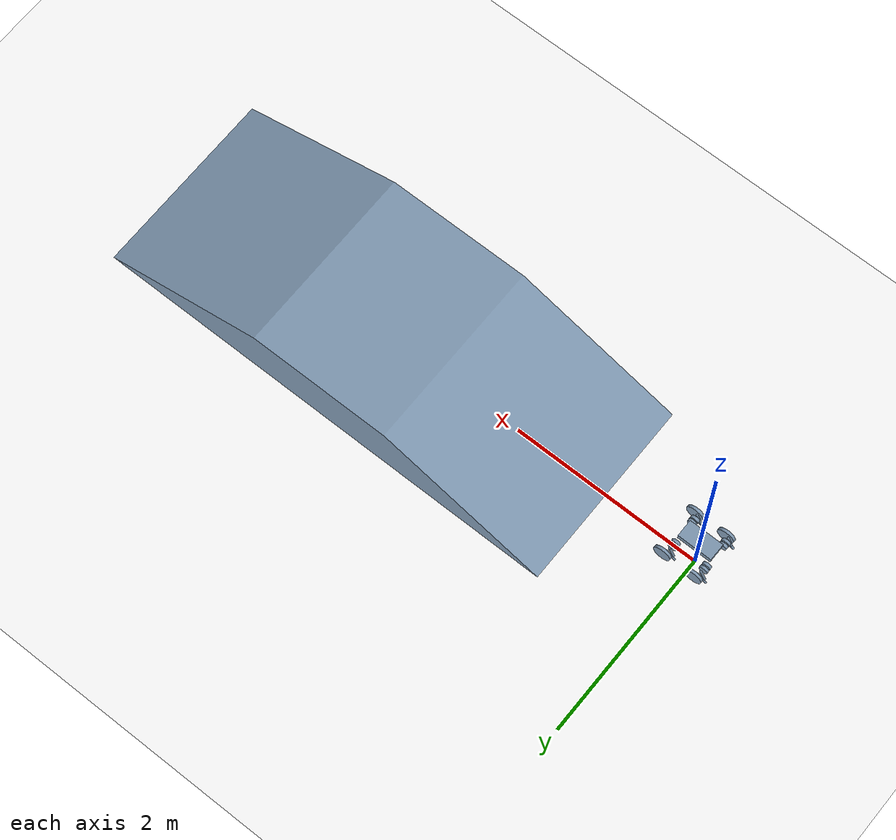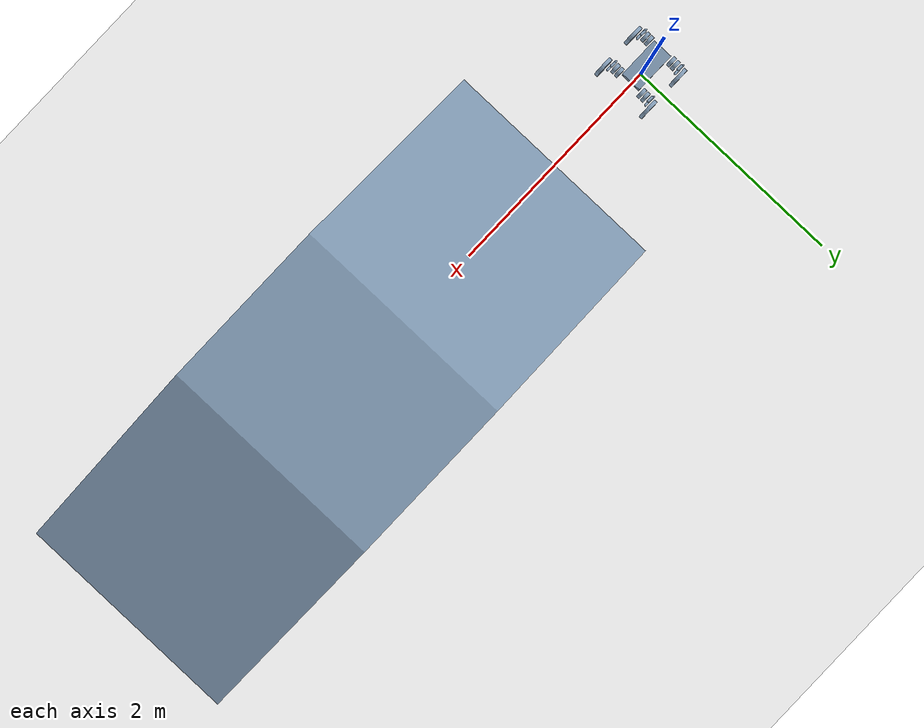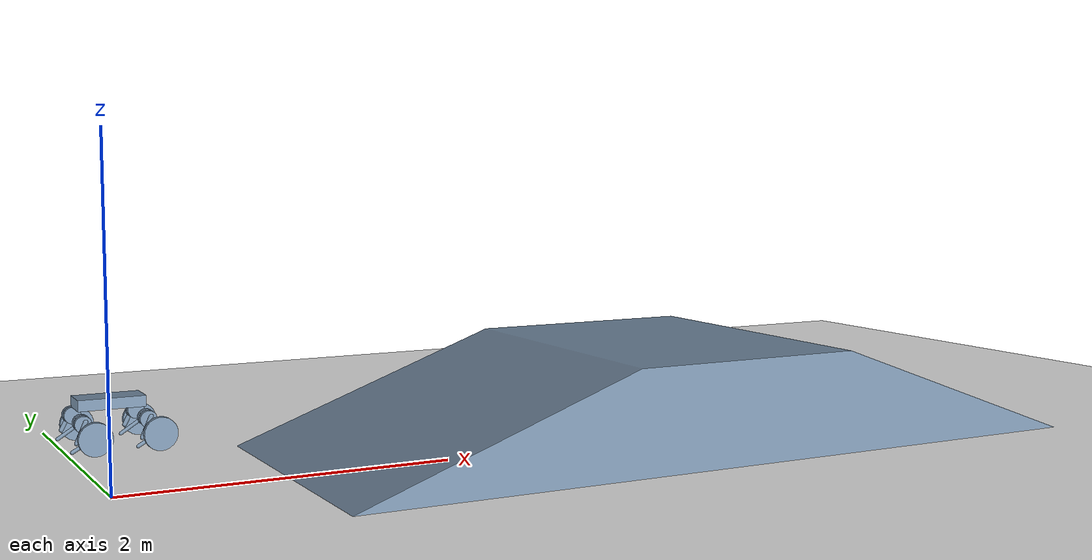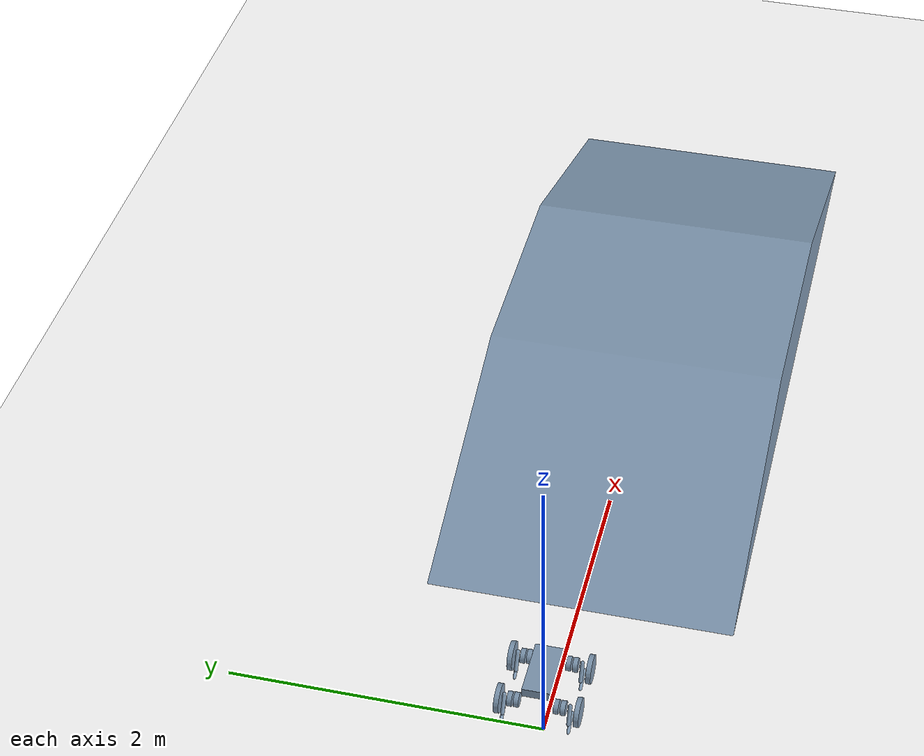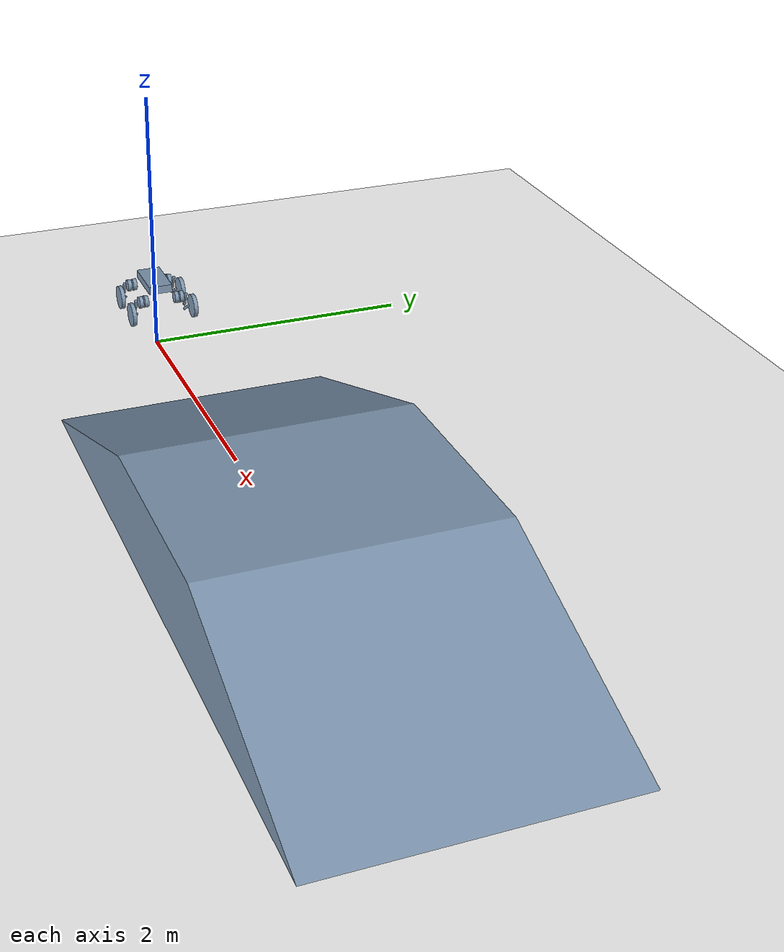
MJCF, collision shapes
<mujoco model="urdf_v1">
    <compiler angle="radian" meshdir="meshes_v1" balanceinertia="false" />
    <size njmax="500" nconmax="100" />
	<option gravity="0 0 -9.806" iterations="50" solver="Newton" timestep="0.002" />
	<default>
		<geom contype="1" conaffinity="1" friction="0.6 0.3 0.3" rgba="0.5 0.6 0.7 0.6" margin="0.001" group="0" />
		<default class="visual">
			<geom contype="0" conaffinity="0" group="1" type="mesh" rgba="0.9 0.9 0.9 1.0" />
		</default>
		<light castshadow="false" diffuse="1 1 1" />
		<motor ctrllimited="true" />
		<camera fovy="60" />
		<joint damping="0.01" armature="0.01" frictionloss="0.0" />
	</default>

    <asset>
        <mesh name="base_link" file="base_link.STL" />
        <mesh name="left_front_abad" file="left_front_abad.STL" />
        <mesh name="left_front_hip" file="left_front_hip.STL" />
        <mesh name="left_front_knee" file="left_front_knee.STL" />
        <mesh name="left_front_wheel" file="left_front_wheel.STL" />
        <mesh name="left_back_abad" file="left_back_abad.STL" />
        <mesh name="left_back_hip" file="left_back_hip.STL" />
        <mesh name="left_back_knee" file="left_back_knee.STL" />
        <mesh name="left_back_wheel" file="left_back_wheel.STL" />
        <mesh name="right_back_abad" file="right_back_abad.STL" />
        <mesh name="right_back_hip" file="right_back_hip.STL" />
        <mesh name="right_back_knee" file="right_back_knee.STL" />
        <mesh name="right_back_wheel" file="right_back_wheel.STL" />
        <mesh name="right_front_abad" file="right_front_abad.STL" />
        <mesh name="right_front_hip" file="right_front_hip.STL" />
        <mesh name="right_front_knee" file="right_front_knee.STL" />
        <mesh name="right_front_wheel" file="right_front_wheel.STL" />
        <mesh name="slope" file="20degree_slope.STL" />
    </asset>

    <asset>
		<texture type="skybox" builtin="gradient" rgb1="1.0 1.0 1.0" rgb2="1.0 1.0 1.0" width="512" height="512" />
		<texture name="plane" type="2d" builtin="flat" rgb1="1 1 1" rgb2="1 1 1" width="512" height="512" mark="cross" markrgb="0 0 0" />
		<material name="plane" reflectance="0.0" texture="plane" texrepeat="3 3" texuniform="true" />
	</asset>
	<visual>
		<rgba com="0.502 1.0 0 0.5" contactforce="0.2 0.98 0.2 0.8" contactpoint="1.0 1.0 0.6 0.4" />
		<scale com="0.2" forcewidth="0.05" contactwidth="0.10" contactheight="0.04" />
	</visual>

    <worldbody>
        <light directional="true" diffuse=".8 .8 .8" pos="0 0 10" dir="0 0 -10" />
		<camera name="track" mode="trackcom" pos="0 -1.3 1.6" xyaxes="1 0 0 0 0.707 0.707" />
		<geom name="floor" type="plane" conaffinity="1" condim="3" contype="1" rgba="1 1 1 1" material="plane" pos="0 0 0" size="0 0 1" />

        <!-- slope -->
        <body name="slope" pos= '1 1 0' euler= '1.57 0 0'>
            <geom type="mesh" mesh="slope" />
        </body>

        <!-- base -->
        <body name='base_Link' pos = '0 0 0.5' euler='0 0 0'>
        	<joint type="free" limited="false" frictionloss="disable" damping="0" stiffness="0" armature="0" />
            <geom type='mesh' mesh='base_link' class='visual' />
            <inertial pos='-1.8096E-05 3.0411E-05 0.016642' mass='7.15091' fullinertia='0.08601206412 0.14884094559 0.223369762 -5.760E-08 3.1321E-07 4.56436E-06' />
            <geom name="base_link_collision" type="box" size="0.18 0.09 0.03" pos="0 0 0.03" euler="0 0 0" />
            <site name='imu' pos='0 0 0' />

            <!-- left_front_abad -->
            <body name="left_front_abad" pos="0.17 0.12 0.002" quat="-3.67321e-06 -1 0 0">
                <joint name="left_front_abad" type="hinge" pos="0 0 0" axis="0 0 1" limited="true" range="-6.28 6.28" />
                <inertial pos="-7.04882e-07 0.000910475 0.0448439" quat="0.707093 0.00437729 -0.00443096 0.707093" mass="0.66819" diaginertia="0.000876856 0.000573746 0.000462542" />
                <geom name='left_front_abad_collision' type='cylinder' size='0.045 0.015' pos='0.0 0.0 0.055' euler='1.57 0 1.57' />
                <geom type="mesh" rgba="0.898039 0.917647 0.929412 1" mesh="left_front_abad" class='visual' />

                <!-- left_front_hip -->
                <body name="left_front_hip" pos="0 -0.01835 0.057" quat="-0.376746 -0.37674 0.598388 -0.598383">
                    <joint name="left_front_hip" type="hinge" pos="0 0 0" axis="0 0 1" limited="true" range="-6.28 6.28" />
                    <inertial pos="0.016237 0.00015043 0.038947" quat="-0.00308164 0.798201 -0.00366155 0.602372" mass="0.84285" diaginertia="0.00157785 0.00135006 0.000637209" />
                    <geom name='left_front_hip_collision' type='cylinder' size='0.045 0.015' pos='0.0 0.0 0.022' euler='0 0 0' />
                    <geom name='left_front_hip_link_collision' type='capsule' size='0.012 0.06' pos='0.04 0.0 0.06' euler='1.57 1.6 0' />
                    <geom type="mesh" rgba="0.79216 0.81961 0.93333 1" mesh="left_front_hip" class='visual' />

                    <!-- left_front_knee -->
                    <body name="left_front_knee" pos="0.152 0 0.06495" quat="0.287098 0 0 -0.957901">
                        <joint name="left_front_knee" type="hinge" pos="0 0 0" axis="0 0 1" limited="true" range="-6.28 6.28" />
                        <inertial pos="0.11232 1.3956e-06 0.012156" quat="5.05485e-06 0.738227 -1.77802e-05 0.674553" mass="0.70731" diaginertia="0.00156187 0.00124833 0.000480588" />
                        <geom name='left_front_knee_collision' type='capsule' size='0.01 0.06' pos='0.06 0.0 0.0' euler='1.57 -1.6 0' />
                        <geom type="mesh" rgba="0.89804 0.91765 0.92941 1" mesh="left_front_knee" class='visual' />

                        <!-- left_front_wheel-->
                        <body name="left_front_wheel" pos="0.13 0 0.03845" quat="0.963576 0 0 0.267435">
                            <joint name="left_front_wheel" type="hinge" pos="0 0 0" axis="0 0 1" limited="false" />
                            <inertial pos="-1.9805e-11 7.7595e-12 0.00058064" quat="0.5 0.5 -0.5 0.5" mass="0.42087" diaginertia="0.002332 0.0011927 0.0011927" />
                            <geom name='left_front_wheel_collision' type='cylinder' size='0.09 0.015' pos='0.0 0.0 0.0' euler='0 0 0' />
                            <geom type="mesh" rgba="0.89804 0.91765 0.92941 1" mesh="left_front_wheel" class='visual' />
                        </body>
                    </body>
                </body>
            </body>

            <!-- left_back_abad -->
            <body name="left_back_abad" pos="-0.17 0.12 0.002" quat="-3.67321e-06 -1 0 0">
                <joint name="left_back_abad" type="hinge" pos="0 0 0" axis="0 0 1" limited="true" range="-6.28 6.28" />
                <inertial pos="-7.0488e-07 0.00091048 0.044844" quat="0.707093 0.0043773 -0.00443097 0.707093" mass="0.66819" diaginertia="0.000876856 0.000573746 0.000462543" />
                <geom name='left_back_abad_collision' type='cylinder' size='0.045 0.015' pos='-0.0 0.0 0.055' euler='1.57 0 1.57' />
                <geom type="mesh" rgba="0.89804 0.91765 0.92941 1" mesh="left_back_abad" class='visual' />

                <!-- left_back_hip -->
                <body name="left_back_hip" pos="0 -0.01885 0.057" quat="0.376741 0.376744 -0.598385 0.598385">
                    <joint name="left_back_hip" type="hinge" pos="0 0 0" axis="0 0 1" limited="true" range="-6.28 6.28" />
                    <inertial pos="0.0160946 -6.81384e-05 0.0384467" quat="0.000349173 0.798771 0.00155609 0.601632" mass="0.84285" diaginertia="0.00158039 0.00134949 0.000638276" />
                    <geom name='left_back_hip_collision' type='cylinder' size='0.045 0.015' pos='0.0 0.0 0.022' euler='0 0 0' />
                    <geom name='left_back_hip_link_collision' type='capsule' size='0.012 0.06' pos='0.04 0.0 0.06' euler='1.57 1.6 0' />
                    <geom type="mesh" rgba="0.898039 0.917647 0.929412 1" mesh="left_back_hip" class='visual' />

                    <!-- left_back_knee -->
                    <body name="left_back_knee" pos="0.152 0 0.06445" quat="0.287098 0 0 -0.957901">
                        <joint name="left_back_knee" type="hinge" pos="0 0 0" axis="0 0 1" limited="true" range="-6.28 6.28" />
                        <inertial pos="0.11149 1.3852e-06 0.012112" quat="5.05051e-06 0.738225 -1.778e-05 0.674555" mass="0.70731" diaginertia="0.00156186 0.00124841 0.000480509" />
                        <geom name='left_back_knee_collision' type='capsule' size='0.01 0.06' pos='0.06 0.0 0.0' euler='1.57 -1.6 0' />
                        <geom type="mesh" rgba="0.89804 0.91765 0.92941 1" mesh="left_back_knee" class='visual' />

                        <!-- left_back_wheel-->
                        <body name="left_back_wheel" pos="0.13 0 0.03845" quat="0.963576 0 0 0.267435">
                            <joint name="left_back_wheel" type="hinge" pos="0 0 0" axis="0 0 1" limited="false" />
                            <inertial pos="-1.9737e-11 9.0656e-12 0.00058064" quat="0.5 0.5 -0.5 0.5" mass="0.42087" diaginertia="0.002332 0.0011927 0.0011927" />
                            <geom name='left_back_wheel_collision' type='cylinder' size='0.09 0.015' pos='0.0 0.0 0.0' euler='0 0 0' />
                            <geom type="mesh" rgba="0.89804 0.91765 0.92941 1" mesh="left_back_wheel" class='visual' />
                        </body>
                    </body>
                </body>
            </body>

            <!-- right_back_abad -->
            <body name="right_back_abad" pos="-0.17 -0.12 0.002" quat="-3.67321e-06 -1 0 0">
                <joint name="right_back_abad" type="hinge" pos="0 0 0" axis="0 0 1" limited="true" range="-6.28 6.28" />
                <inertial pos="7.04882e-07 -0.000910475 0.0448439" quat="0.707093 -0.0043773 0.00443097 0.707093" mass="0.66819" diaginertia="0.000876856 0.000573746 0.000462543" />
                <geom name='right_back_abad_collision' type='cylinder' size='0.045 0.015' pos='-0.0 0.0 0.055' euler='1.57 0 1.57' />
                <geom type="mesh" rgba="0.898039 0.917647 0.929412 1" mesh="right_back_abad" class='visual' />

                <!-- right_back_hip -->
                <body name="right_back_hip" pos="0 0.01885 0.057" quat="-0.376746 0.37674 0.598388 0.598383">
                    <joint name="right_back_hip" type="hinge" pos="0 0 0" axis="0 0 1" limited="true" range="-6.28 6.28" />
                    <inertial pos="0.016287 0.00013918 0.038447" quat="-0.00358055 0.7981 -0.00344349 0.602505" mass="0.84285" diaginertia="0.00157704 0.00134915 0.000637868" />
                    <geom name='right_back_hip_collision' type='cylinder' size='0.045 0.015' pos='0.0 0.0 0.022' euler='0 0 0' />
                    <geom name='right_back_hip_link_collision' type='capsule' size='0.012 0.06' pos='0.04 0.0 0.06' euler='1.57 1.6 0' />
                    <geom type="mesh" rgba="0.89804 0.91765 0.92941 1" mesh="right_back_hip" class='visual' />

                    <!-- right_back_knee -->
                    <body name="right_back_knee" pos="0.152 0 0.06445" quat="0.287098 0 0 0.957901">
                        <joint name="right_back_knee" type="hinge" pos="0 0 0" axis="0 0 1" limited="true" range="-6.28 6.28" />
                        <inertial pos="0.11232 1.3953e-06 0.012156" quat="5.00252e-06 0.738505 -1.78496e-05 0.674248" mass="0.70731" diaginertia="0.00156202 0.00124893 0.000481023" />
                        <geom name='right_back_knee_collision' type='capsule' size='0.01 0.06' pos='0.06 0.0 0.0' euler='1.57 -1.6 0' />
                        <geom type="mesh" rgba="0.89804 0.91765 0.92941 1" mesh="right_back_knee" class='visual' />

                        <!-- right_back_wheel -->
                        <body name="right_back_wheel" pos="0.13 0 0.03845" quat="0.963576 0 0 -0.267435">
                            <joint name="right_back_wheel" type="hinge" pos="0 0 0" axis="0 0 1" limited="false" />
                            <inertial pos="1.3145e-11 -1.7233e-11 0.00058064" quat="0.5 0.5 -0.5 0.5" mass="0.42087" diaginertia="0.002332 0.0011927 0.0011927" />
                            <geom name='right_back_wheel_collision' type='cylinder' size='0.09 0.015' pos='0.0 0.0 0.0' euler='0 0 0' />
                            <geom type="mesh" rgba="0.89804 0.91765 0.92941 1" mesh="right_back_wheel" class='visual' />
                        </body>
                    </body>
                </body>
            </body>

            <!-- right_front_abad -->
            <body name="right_front_abad" pos="0.17 -0.12 0.002" quat="-3.67321e-06 -1 0 0">
                <joint name="right_front_abad" type="hinge" pos="0 0 0" axis="0 0 -1" limited="true" range="-6.28 6.28" />
                <inertial pos="7.0488e-07 -0.00091048 0.044844" quat="0.707096 -0.00390123 0.00395492 0.707096" mass="0.66819" diaginertia="0.000876843 0.000573711 0.000462521" />
                <geom name='right_front_abad_collision' type='cylinder' size='0.045 0.015' pos='-0.0 0.0 0.055' euler='1.57 0 1.57' />
                <geom type="mesh" rgba="0.89804 0.91765 0.92941 1" mesh="right_front_abad" class='visual' />

                <!-- right_front_hip -->
                <body name="right_front_hip" pos="0 0.01885 0.057" quat="0.376741 -0.376744 -0.598385 -0.598385">
                    <joint name="right_front_hip" type="hinge" pos="0 0 0" axis="0 0 1" limited="true" range="-6.28 6.28" />
                    <inertial pos="0.016171 -0.00013919 0.038447" quat="0.00187835 0.798102 0.00330577 0.60251" mass="0.84285" diaginertia="0.00157845 0.00134953 0.000636823" />
                    <geom name='right_front_hip_collision' type='cylinder' size='0.045 0.015' pos='0.0 0.0 0.022' euler='0 0 0' />
                    <geom name='right_front_hip_link_collision' type='capsule' size='0.012 0.06' pos='0.04 0.0 0.06' euler='1.57 1.6 0' />
                    <geom type="mesh" rgba="0.89804 0.91765 0.92941 1" mesh="right_front_hip" class='visual' />

                    <!-- right_front_knee -->
                    <body name="right_front_knee" pos="0.152 0 0.06445" quat="0.287098 0 0 0.957901">
                        <joint name="right_front_knee" type="hinge" pos="0 0 0" axis="0 0 1" limited="true" range="-6.28 6.28" />
                        <inertial pos="0.11292 1.4027e-06 0.012216" quat="5.00252e-06 0.738505 -1.78496e-05 0.674248" mass="0.70731" diaginertia="0.00156202 0.00124893 0.000481023" />
                        <geom name='right_front_knee_collision' type='capsule' size='0.01 0.06' pos='0.06 0.0 0.0' euler='1.57 -1.6 0' />
                        <geom type="mesh" rgba="0.89804 0.91765 0.92941 1" mesh="right_front_knee" class='visual' />

                        <!-- right_front_wheel -->
                        <body name="right_front_wheel" pos="0.13 0 0.03845" quat="0.963576 0 0 -0.267435">
                            <joint name="right_front_wheel" type="hinge" pos="0 0 0" axis="0 0 1" limited="false" />
                            <inertial pos="1.9436e-11 8.051e-12 0.00058064" quat="0.5 0.5 -0.5 0.5" mass="0.42087" diaginertia="0.002332 0.0011927 0.0011927" />
                            <geom name='right_front_wheel_collision' type='cylinder' size='0.09 0.015' pos='0.0 0.0 0.0' euler='0 0 0' />
                            <geom type="mesh" rgba="0.89804 0.91765 0.92941 1" mesh="right_front_wheel" class='visual' />
                        </body>
                    </body>
                </body>
            </body>
        </body>
    </worldbody>

    <actuator>
        <!-- torque controller -->
        <motor name="left_front_abad"   joint="left_front_abad"   gear="1" ctrllimited="true" ctrlrange="-10 10" />
        <motor name="left_front_hip"    joint="left_front_hip"    gear="1" ctrllimited="true" ctrlrange="-10 10" />
        <motor name="left_front_knee"   joint="left_front_knee"   gear="1" ctrllimited="true" ctrlrange="-16 16" />
        <motor name="left_front_wheel"  joint="left_front_wheel"  gear="1" ctrllimited="true" ctrlrange="-10 10" />
        <motor name="left_back_abad"    joint="left_back_abad"    gear="1" ctrllimited="true" ctrlrange="-10 10" />
        <motor name="left_back_hip"     joint="left_back_hip"     gear="1" ctrllimited="true" ctrlrange="-10 10" />
        <motor name="left_back_knee"    joint="left_back_knee"    gear="1" ctrllimited="true" ctrlrange="-16 16" />
        <motor name="left_back_wheel"   joint="left_back_wheel"   gear="1" ctrllimited="true" ctrlrange="-10 10" />
        <motor name="right_back_abad"   joint="right_back_abad"   gear="1" ctrllimited="true" ctrlrange="-10 10" />
        <motor name="right_back_hip"    joint="right_back_hip"    gear="1" ctrllimited="true" ctrlrange="-10 10" />
        <motor name="right_back_knee"   joint="right_back_knee"   gear="1" ctrllimited="true" ctrlrange="-16 16" />
        <motor name="right_back_wheel"  joint="right_back_wheel"  gear="1" ctrllimited="true" ctrlrange="-10 10" />
        <motor name="right_front_abad"  joint="right_front_abad"  gear="1" ctrllimited="true" ctrlrange="-10 10" />
        <motor name="right_front_hip"   joint="right_front_hip"   gear="1" ctrllimited="true" ctrlrange="-10 10" />
        <motor name="right_front_knee"  joint="right_front_knee"  gear="1" ctrllimited="true" ctrlrange="-16 16" />
        <motor name="right_front_wheel" joint="right_front_wheel" gear="1" ctrllimited="true" ctrlrange="-10 10" />
        <!-- position controller -->
    </actuator>

    <sensor>
        <!-- pos sensor index from 0-15 -->
        <jointpos name="left_front_abad_pos"   joint="left_front_abad"   />
        <jointpos name="left_front_hip_pos"    joint="left_front_hip"    />
        <jointpos name="left_front_knee_pos"   joint="left_front_knee"   />
        <jointpos name="left_front_wheel_pos"  joint="left_front_wheel"  />
        <jointpos name="left_back_abad_pos"    joint="left_back_abad"    />
        <jointpos name="left_back_hip_pos"     joint="left_back_hip"     />
        <jointpos name="left_back_knee_pos"    joint="left_back_knee"    />
        <jointpos name="left_back_wheel_pos"   joint="left_back_wheel"   />
        <jointpos name="right_back_abad_pos"   joint="right_back_abad"   />
        <jointpos name="right_back_hip_pos"    joint="right_back_hip"    />
        <jointpos name="right_back_knee_pos"   joint="right_back_knee"   />
        <jointpos name="right_back_wheel_pos"  joint="right_back_wheel"  />
        <jointpos name="right_front_abad_pos"  joint="right_front_abad"  />
        <jointpos name="right_front_hip_pos"   joint="right_front_hip"   />
        <jointpos name="right_front_knee_pos"  joint="right_front_knee"  />
        <jointpos name="right_front_wheel_pos" joint="right_front_wheel" />
        <!-- vel sensor index from 16-31 -->
        <jointvel name="left_front_abad_vel"   joint="left_front_abad"   />
        <jointvel name="left_front_hip_vel"    joint="left_front_hip"    />
        <jointvel name="left_front_knee_vel"   joint="left_front_knee"   />
        <jointvel name="left_front_wheel_vel"  joint="left_front_wheel"  />
        <jointvel name="left_back_abad_vel"    joint="left_back_abad"    />
        <jointvel name="left_back_hip_vel"     joint="left_back_hip"     />
        <jointvel name="left_back_knee_vel"    joint="left_back_knee"    />
        <jointvel name="left_back_wheel_vel"   joint="left_back_wheel"   />
        <jointvel name="right_back_abad_vel"   joint="right_back_abad"   />
        <jointvel name="right_back_hip_vel"    joint="right_back_hip"    />
        <jointvel name="right_back_knee_vel"   joint="right_back_knee"   />
        <jointvel name="right_back_wheel_vel"  joint="right_back_wheel"  />
        <jointvel name="right_front_abad_vel"  joint="right_front_abad"  />
        <jointvel name="right_front_hip_vel"   joint="right_front_hip"   />
        <jointvel name="right_front_knee_vel"  joint="right_front_knee"  />
        <jointvel name="right_front_wheel_vel" joint="right_front_wheel" />
    </sensor>

</mujoco>
